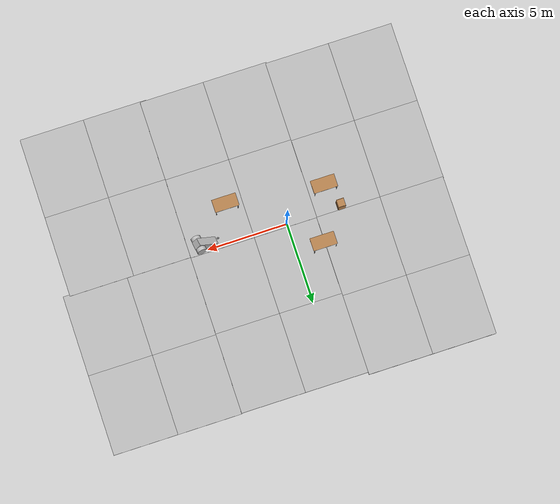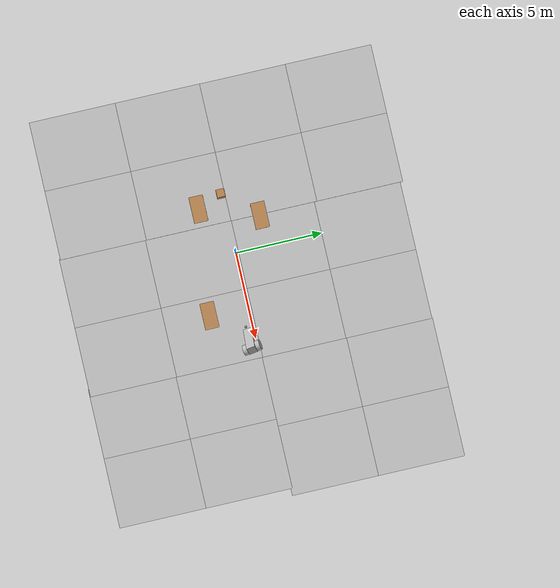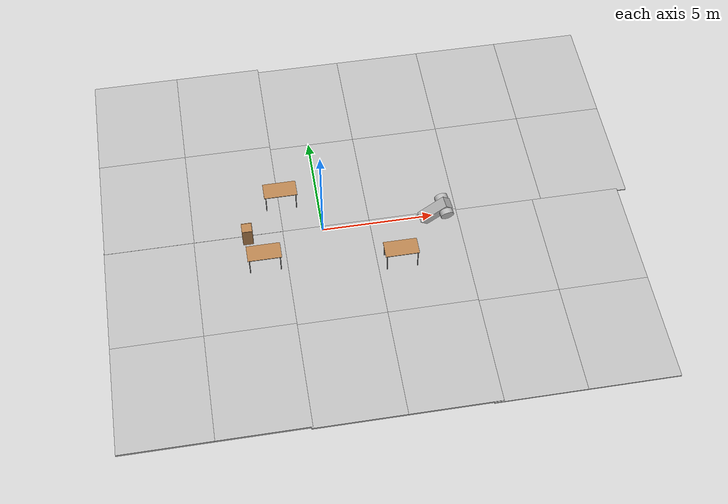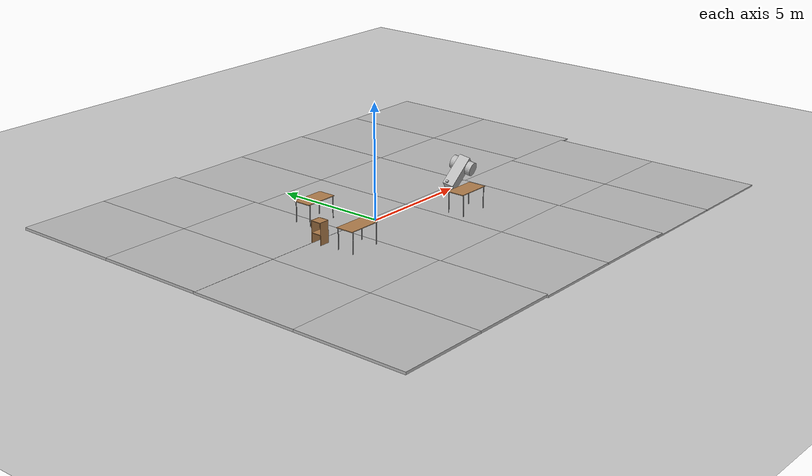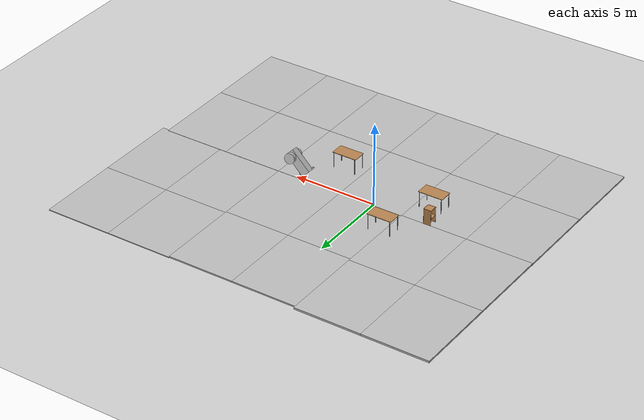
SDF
<sdf version="1.6">
 <world name="default">
  <light name="sun" type="directional">
   <pose>0 0 10 0 -0 0</pose>
   <diffuse>0.8 0.8 0.8 1</diffuse>
   <specular>0.2 0.2 0.2 1</specular>
   <attenuation>
    <range>1000</range>
    <constant>0.9</constant>
    <linear>0.01</linear>
    <quadratic>0.001</quadratic>
   </attenuation>
   <direction>-0.5 0.1 -0.9</direction>
  </light>
  <model name="ground_plane">
   <static>1</static>
   <link name="link">
    <collision name="collision">
     <geometry><plane><normal>0 0 1</normal><size>100 100</size></plane></geometry>
     <surface>
      <contact><collide_bitmask>65535</collide_bitmask></contact>
      <friction><ode><mu>100</mu><mu2>50</mu2></ode></friction>
     </surface>
    </collision>
    <visual name="visual">
     <cast_shadows>0</cast_shadows>
     <geometry><plane><normal>0 0 1</normal><size>100 100</size></plane></geometry>
     <material>
      <script><uri>file://media/materials/scripts/gazebo.material</uri><name>Gazebo/Grey</name></script>
     </material>
    </visual>
   </link>
  </model>
  <gravity>0 0 -9.8</gravity>
  <magnetic_field>6e-06 2.3e-05 -4.2e-05</magnetic_field>
  <atmosphere type="adiabatic"/>
  <physics name="default_physics" default="0" type="ode">
   <max_step_size>0.001</max_step_size>
   <real_time_factor>1</real_time_factor>
   <real_time_update_rate>1000</real_time_update_rate>
  </physics>
  <scene><ambient>0.4 0.4 0.4 1</ambient><background>0.7 0.7 0.7 1</background><shadows>1</shadows></scene>
  <spherical_coordinates>
   <surface_model>EARTH_WGS84</surface_model>
   <latitude_deg>0</latitude_deg>
   <longitude_deg>0</longitude_deg>
   <elevation>0</elevation>
   <heading_deg>0</heading_deg>
  </spherical_coordinates>
  <model name="table">
   <static>1</static>
   <link name="link">
    <collision name="surface">
     <pose>0 0 1 0 -0 0</pose>
     <geometry><box><size>1.5 0.8 0.03</size></box></geometry>
     <surface><friction><ode><mu>0.6</mu><mu2>0.6</mu2></ode></friction></surface>
    </collision>
    <visual name="visual1">
     <pose>0 0 1 0 -0 0</pose>
     <geometry><box><size>1.5 0.8 0.03</size></box></geometry>
     <material>
      <script><uri>file://media/materials/scripts/gazebo.material</uri><name>Gazebo/Wood</name></script>
     </material>
    </visual>
    <collision name="front_left_leg">
     <pose>0.68 0.38 0.5 0 -0 0</pose>
     <geometry><cylinder><radius>0.02</radius><length>1</length></cylinder></geometry>
    </collision>
    <visual name="front_left_leg">
     <pose>0.68 0.38 0.5 0 -0 0</pose>
     <geometry><cylinder><radius>0.02</radius><length>1</length></cylinder></geometry>
     <material>
      <script><uri>file://media/materials/scripts/gazebo.material</uri><name>Gazebo/Grey</name></script>
     </material>
    </visual>
    <collision name="front_right_leg">
     <pose>0.68 -0.38 0.5 0 -0 0</pose>
     <geometry><cylinder><radius>0.02</radius><length>1</length></cylinder></geometry>
    </collision>
    <visual name="front_right_leg">
     <pose>0.68 -0.38 0.5 0 -0 0</pose>
     <geometry><cylinder><radius>0.02</radius><length>1</length></cylinder></geometry>
     <material>
      <script><uri>file://media/materials/scripts/gazebo.material</uri><name>Gazebo/Grey</name></script>
     </material>
    </visual>
    <collision name="back_right_leg">
     <pose>-0.68 -0.38 0.5 0 -0 0</pose>
     <geometry><cylinder><radius>0.02</radius><length>1</length></cylinder></geometry>
    </collision>
    <visual name="back_right_leg">
     <pose>-0.68 -0.38 0.5 0 -0 0</pose>
     <geometry><cylinder><radius>0.02</radius><length>1</length></cylinder></geometry>
     <material>
      <script><uri>file://media/materials/scripts/gazebo.material</uri><name>Gazebo/Grey</name></script>
     </material>
    </visual>
    <collision name="back_left_leg">
     <pose>-0.68 0.38 0.5 0 -0 0</pose>
     <geometry><cylinder><radius>0.02</radius><length>1</length></cylinder></geometry>
    </collision>
    <visual name="back_left_leg">
     <pose>-0.68 0.38 0.5 0 -0 0</pose>
     <geometry><cylinder><radius>0.02</radius><length>1</length></cylinder></geometry>
     <material>
      <script><uri>file://media/materials/scripts/gazebo.material</uri><name>Gazebo/Grey</name></script>
     </material>
    </visual>
   </link>
   <pose>-1.70145 1.78974 0 0 -0 0</pose>
  </model>
  <model name="table_0">
   <static>1</static>
   <link name="link">
    <collision name="surface">
     <pose>0 0 1 0 -0 0</pose>
     <geometry><box><size>1.5 0.8 0.03</size></box></geometry>
     <surface><friction><ode><mu>0.6</mu><mu2>0.6</mu2></ode></friction></surface>
    </collision>
    <visual name="visual1">
     <pose>0 0 1 0 -0 0</pose>
     <geometry><box><size>1.5 0.8 0.03</size></box></geometry>
     <material>
      <script><uri>file://media/materials/scripts/gazebo.material</uri><name>Gazebo/Wood</name></script>
     </material>
    </visual>
    <collision name="front_left_leg">
     <pose>0.68 0.38 0.5 0 -0 0</pose>
     <geometry><cylinder><radius>0.02</radius><length>1</length></cylinder></geometry>
    </collision>
    <visual name="front_left_leg">
     <pose>0.68 0.38 0.5 0 -0 0</pose>
     <geometry><cylinder><radius>0.02</radius><length>1</length></cylinder></geometry>
     <material>
      <script><uri>file://media/materials/scripts/gazebo.material</uri><name>Gazebo/Grey</name></script>
     </material>
    </visual>
    <collision name="front_right_leg">
     <pose>0.68 -0.38 0.5 0 -0 0</pose>
     <geometry><cylinder><radius>0.02</radius><length>1</length></cylinder></geometry>
    </collision>
    <visual name="front_right_leg">
     <pose>0.68 -0.38 0.5 0 -0 0</pose>
     <geometry><cylinder><radius>0.02</radius><length>1</length></cylinder></geometry>
     <material>
      <script><uri>file://media/materials/scripts/gazebo.material</uri><name>Gazebo/Grey</name></script>
     </material>
    </visual>
    <collision name="back_right_leg">
     <pose>-0.68 -0.38 0.5 0 -0 0</pose>
     <geometry><cylinder><radius>0.02</radius><length>1</length></cylinder></geometry>
    </collision>
    <visual name="back_right_leg">
     <pose>-0.68 -0.38 0.5 0 -0 0</pose>
     <geometry><cylinder><radius>0.02</radius><length>1</length></cylinder></geometry>
     <material>
      <script><uri>file://media/materials/scripts/gazebo.material</uri><name>Gazebo/Grey</name></script>
     </material>
    </visual>
    <collision name="back_left_leg">
     <pose>-0.68 0.38 0.5 0 -0 0</pose>
     <geometry><cylinder><radius>0.02</radius><length>1</length></cylinder></geometry>
    </collision>
    <visual name="back_left_leg">
     <pose>-0.68 0.38 0.5 0 -0 0</pose>
     <geometry><cylinder><radius>0.02</radius><length>1</length></cylinder></geometry>
     <material>
      <script><uri>file://media/materials/scripts/gazebo.material</uri><name>Gazebo/Grey</name></script>
     </material>
    </visual>
   </link>
   <pose>-2.81 -1.50709 0 0 -0 0</pose>
  </model>
  <model name="cabinet">
   <static>1</static>
   <link name="cabinet_bottom_plate">
    <inertial>
     <pose>0 0 -1 0 -0 0</pose>
     <inertia><ixx>2.05</ixx><ixy>0</ixy><ixz>0</ixz><iyy>2.05</iyy><iyz>0</iyz><izz>2.05</izz></inertia>
     <mass>25</mass>
    </inertial>
    <collision name="cabinet_bottom_plate_geom">
     <pose>0 0 0.01 0 -0 0</pose>
     <geometry><box><size>0.45 0.45 0.02</size></box></geometry>
    </collision>
    <visual name="cabinet_bottom_plate_geom_visual">
     <pose>0 0 0.01 0 -0 0</pose>
     <geometry><box><size>0.45 0.45 0.02</size></box></geometry>
     <material>
      <script><uri>file://media/materials/scripts/gazebo.material</uri><name>Gazebo/Wood</name></script>
     </material>
    </visual>
    <collision name="cabinet_bottom_plate_geom_cabinet_back_plate">
     <pose>0.235 0 0.51 0 -0 0</pose>
     <geometry><box><size>0.02 0.45 1.02</size></box></geometry>
    </collision>
    <visual name="cabinet_bottom_plate_geom_cabinet_back_plate_visual">
     <pose>0.235 0 0.51 0 -0 0</pose>
     <geometry><box><size>0.02 0.45 1.02</size></box></geometry>
     <material>
      <script><uri>file://media/materials/scripts/gazebo.material</uri><name>Gazebo/Wood</name></script>
     </material>
    </visual>
    <collision name="cabinet_bottom_plate_geom_cabinet_left_plate">
     <pose>0 0.235 0.51 0 -0 0</pose>
     <geometry><box><size>0.45 0.02 1.02</size></box></geometry>
    </collision>
    <visual name="cabinet_bottom_plate_geom_cabinet_left_plate_visual">
     <pose>0 0.235 0.51 0 -0 0</pose>
     <geometry><box><size>0.45 0.02 1.02</size></box></geometry>
     <material>
      <script><uri>file://media/materials/scripts/gazebo.material</uri><name>Gazebo/Wood</name></script>
     </material>
    </visual>
    <collision name="cabinet_bottom_plate_geom_cabinet_middle_plate">
     <pose>0 0 0.51 0 -0 0</pose>
     <geometry><box><size>0.45 0.45 0.02</size></box></geometry>
    </collision>
    <visual name="cabinet_bottom_plate_geom_cabinet_middle_plate_visual">
     <pose>0 0 0.51 0 -0 0</pose>
     <geometry><box><size>0.45 0.45 0.02</size></box></geometry>
     <material>
      <script><uri>file://media/materials/scripts/gazebo.material</uri><name>Gazebo/Wood</name></script>
     </material>
    </visual>
    <collision name="cabinet_bottom_plate_geom_cabinet_right_plate">
     <pose>0 -0.235 0.51 0 -0 0</pose>
     <geometry><box><size>0.45 0.02 1.02</size></box></geometry>
    </collision>
    <visual name="cabinet_bottom_plate_geom_cabinet_right_plate_visual">
     <pose>0 -0.235 0.51 0 -0 0</pose>
     <geometry><box><size>0.45 0.02 1.02</size></box></geometry>
     <material>
      <script><uri>file://media/materials/scripts/gazebo.material</uri><name>Gazebo/Wood</name></script>
     </material>
    </visual>
    <collision name="cabinet_bottom_plate_geom_cabinet_top_plate">
     <pose>0 0 1.01 0 -0 0</pose>
     <geometry><box><size>0.45 0.45 0.02</size></box></geometry>
    </collision>
    <visual name="cabinet_bottom_plate_geom_cabinet_top_plate_visual">
     <pose>0 0 1.01 0 -0 0</pose>
     <geometry><box><size>0.45 0.45 0.02</size></box></geometry>
     <material>
      <script><uri>file://media/materials/scripts/gazebo.material</uri><name>Gazebo/Wood</name></script>
     </material>
    </visual>
   </link>
   <pose>-3.41931 -0.092845 0 0 -0 0</pose>
  </model>
  <model name="table_1">
   <static>1</static>
   <link name="link">
    <collision name="surface">
     <pose>0 0 1 0 -0 0</pose>
     <geometry><box><size>1.5 0.8 0.03</size></box></geometry>
     <surface><friction><ode><mu>0.6</mu><mu2>0.6</mu2></ode></friction></surface>
    </collision>
    <visual name="visual1">
     <pose>0 0 1 0 -0 0</pose>
     <geometry><box><size>1.5 0.8 0.03</size></box></geometry>
     <material>
      <script><uri>file://media/materials/scripts/gazebo.material</uri><name>Gazebo/Wood</name></script>
     </material>
    </visual>
    <collision name="front_left_leg">
     <pose>0.68 0.38 0.5 0 -0 0</pose>
     <geometry><cylinder><radius>0.02</radius><length>1</length></cylinder></geometry>
    </collision>
    <visual name="front_left_leg">
     <pose>0.68 0.38 0.5 0 -0 0</pose>
     <geometry><cylinder><radius>0.02</radius><length>1</length></cylinder></geometry>
     <material>
      <script><uri>file://media/materials/scripts/gazebo.material</uri><name>Gazebo/Grey</name></script>
     </material>
    </visual>
    <collision name="front_right_leg">
     <pose>0.68 -0.38 0.5 0 -0 0</pose>
     <geometry><cylinder><radius>0.02</radius><length>1</length></cylinder></geometry>
    </collision>
    <visual name="front_right_leg">
     <pose>0.68 -0.38 0.5 0 -0 0</pose>
     <geometry><cylinder><radius>0.02</radius><length>1</length></cylinder></geometry>
     <material>
      <script><uri>file://media/materials/scripts/gazebo.material</uri><name>Gazebo/Grey</name></script>
     </material>
    </visual>
    <collision name="back_right_leg">
     <pose>-0.68 -0.38 0.5 0 -0 0</pose>
     <geometry><cylinder><radius>0.02</radius><length>1</length></cylinder></geometry>
    </collision>
    <visual name="back_right_leg">
     <pose>-0.68 -0.38 0.5 0 -0 0</pose>
     <geometry><cylinder><radius>0.02</radius><length>1</length></cylinder></geometry>
     <material>
      <script><uri>file://media/materials/scripts/gazebo.material</uri><name>Gazebo/Grey</name></script>
     </material>
    </visual>
    <collision name="back_left_leg">
     <pose>-0.68 0.38 0.5 0 -0 0</pose>
     <geometry><cylinder><radius>0.02</radius><length>1</length></cylinder></geometry>
    </collision>
    <visual name="back_left_leg">
     <pose>-0.68 0.38 0.5 0 -0 0</pose>
     <geometry><cylinder><radius>0.02</radius><length>1</length></cylinder></geometry>
     <material>
      <script><uri>file://media/materials/scripts/gazebo.material</uri><name>Gazebo/Grey</name></script>
     </material>
    </visual>
   </link>
   <pose>3.1591 -2.24128 0 0 -0 0</pose>
  </model>
  <model name="fcar33">
   <link name="caster">
    <inertial>
     <mass>1</mass>
     <inertia><ixx>0.1</ixx><ixy>0</ixy><ixz>0</ixz><iyy>0.1</iyy><iyz>0</iyz><izz>0.1</izz></inertia>
    </inertial>
    <pose>-0.55 0 0.2 0 -0 0</pose>
    <visual name="visual">
     <geometry><sphere><radius>0.2</radius></sphere></geometry>
     <material><shader type="pixel"/><emissive>0 0 0 1</emissive></material>
    </visual>
    <collision name="collision">
     <geometry><sphere><radius>0.2</radius></sphere></geometry>
     <surface>
      <friction>
       <ode><mu>1</mu><mu2>1</mu2><fdir1>0 0 0</fdir1><slip1>0</slip1><slip2>0</slip2></ode>
       <torsional>
        <coefficient>1</coefficient>
        <patch_radius>0</patch_radius>
        <surface_radius>0</surface_radius>
        <use_patch_radius>1</use_patch_radius>
        <ode><slip>0</slip></ode>
       </torsional>
      </friction>
      <bounce><restitution_coefficient>0</restitution_coefficient><threshold>1e+06</threshold></bounce>
      <contact>
       <collide_without_contact>0</collide_without_contact>
       <collide_without_contact_bitmask>1</collide_without_contact_bitmask>
       <collide_bitmask>1</collide_bitmask>
       <ode>
        <soft_cfm>0</soft_cfm>
        <soft_erp>0.2</soft_erp>
        <kp>1e+13</kp>
        <kd>1</kd>
        <max_vel>0.01</max_vel>
        <min_depth>0</min_depth>
       </ode>
       <bullet>
        <split_impulse>1</split_impulse>
        <split_impulse_penetration_threshold>-0.01</split_impulse_penetration_threshold>
        <soft_cfm>0</soft_cfm>
        <soft_erp>0.2</soft_erp>
        <kp>1e+13</kp>
        <kd>1</kd>
       </bullet>
      </contact>
     </surface>
    </collision>
   </link>
   <link name="left_wheel">
    <inertial>
     <mass>1</mass>
     <inertia><ixx>0.145833</ixx><ixy>0</ixy><ixz>0</ixz><iyy>0.145833</iyy><iyz>0</iyz><izz>0.125</izz></inertia>
    </inertial>
    <pose>0.45 -0.375029 0.3 1.5707 -0 0</pose>
    <visual name="visual">
     <geometry><cylinder><radius>0.3</radius><length>0.25</length></cylinder></geometry>
     <material><shader type="pixel"/></material>
    </visual>
    <collision name="collision">
     <geometry><cylinder><radius>0.3</radius><length>0.25</length></cylinder></geometry>
     <surface>
      <friction>
       <ode><mu>1</mu><mu2>1</mu2><fdir1>0 0 0</fdir1><slip1>0</slip1><slip2>0</slip2></ode>
       <torsional>
        <coefficient>1</coefficient>
        <patch_radius>0</patch_radius>
        <surface_radius>0</surface_radius>
        <use_patch_radius>1</use_patch_radius>
        <ode><slip>0</slip></ode>
       </torsional>
      </friction>
      <bounce><restitution_coefficient>0</restitution_coefficient><threshold>1e+06</threshold></bounce>
      <contact>
       <collide_without_contact>0</collide_without_contact>
       <collide_without_contact_bitmask>1</collide_without_contact_bitmask>
       <collide_bitmask>1</collide_bitmask>
       <ode>
        <soft_cfm>0</soft_cfm>
        <soft_erp>0.2</soft_erp>
        <kp>1e+13</kp>
        <kd>1</kd>
        <max_vel>0.01</max_vel>
        <min_depth>0</min_depth>
       </ode>
       <bullet>
        <split_impulse>1</split_impulse>
        <split_impulse_penetration_threshold>-0.01</split_impulse_penetration_threshold>
        <soft_cfm>0</soft_cfm>
        <soft_erp>0.2</soft_erp>
        <kp>1e+13</kp>
        <kd>1</kd>
       </bullet>
      </contact>
     </surface>
    </collision>
   </link>
   <link name="mbody">
    <inertial>
     <mass>0.5</mass>
     <inertia>
      <ixx>0.0287018</ixx>
      <ixy>0</ixy>
      <ixz>0</ixz>
      <iyy>0.0850413</iyy>
      <iyz>0</iyz>
      <izz>0.0951773</izz>
     </inertia>
    </inertial>
    <pose>0 0 0.4 0 -0 0</pose>
    <visual name="visual">
     <geometry><box><size>1.5 0.5 0.5</size></box></geometry>
     <material><shader type="pixel"/><emissive>0 0 0 1</emissive></material>
    </visual>
    <collision name="collision">
     <geometry><box><size>1.5 0.5 0.5</size></box></geometry>
     <surface>
      <friction>
       <ode><mu>1</mu><mu2>1</mu2><fdir1>0 0 0</fdir1><slip1>0</slip1><slip2>0</slip2></ode>
       <torsional>
        <coefficient>1</coefficient>
        <patch_radius>0</patch_radius>
        <surface_radius>0</surface_radius>
        <use_patch_radius>1</use_patch_radius>
        <ode><slip>0</slip></ode>
       </torsional>
      </friction>
      <bounce><restitution_coefficient>0</restitution_coefficient><threshold>1e+06</threshold></bounce>
      <contact>
       <collide_without_contact>0</collide_without_contact>
       <collide_without_contact_bitmask>1</collide_without_contact_bitmask>
       <collide_bitmask>1</collide_bitmask>
       <ode>
        <soft_cfm>0</soft_cfm>
        <soft_erp>0.2</soft_erp>
        <kp>1e+13</kp>
        <kd>1</kd>
        <max_vel>0.01</max_vel>
        <min_depth>0</min_depth>
       </ode>
       <bullet>
        <split_impulse>1</split_impulse>
        <split_impulse_penetration_threshold>-0.01</split_impulse_penetration_threshold>
        <soft_cfm>0</soft_cfm>
        <soft_erp>0.2</soft_erp>
        <kp>1e+13</kp>
        <kd>1</kd>
       </bullet>
      </contact>
     </surface>
    </collision>
   </link>
   <link name="right_wheel">
    <inertial>
     <mass>1</mass>
     <inertia><ixx>0.145833</ixx><ixy>0</ixy><ixz>0</ixz><iyy>0.145833</iyy><iyz>0</iyz><izz>0.125</izz></inertia>
    </inertial>
    <pose>0.45 0.375029 0.3 1.5707 -0 0</pose>
    <visual name="visual">
     <geometry><cylinder><radius>0.3</radius><length>0.25</length></cylinder></geometry>
     <material><shader type="pixel"/></material>
    </visual>
    <collision name="collision">
     <geometry><cylinder><radius>0.3</radius><length>0.25</length></cylinder></geometry>
     <surface>
      <friction>
       <ode><mu>1</mu><mu2>1</mu2><fdir1>0 0 0</fdir1><slip1>0</slip1><slip2>0</slip2></ode>
       <torsional>
        <coefficient>1</coefficient>
        <patch_radius>0</patch_radius>
        <surface_radius>0</surface_radius>
        <use_patch_radius>1</use_patch_radius>
        <ode><slip>0</slip></ode>
       </torsional>
      </friction>
      <bounce><restitution_coefficient>0</restitution_coefficient><threshold>1e+06</threshold></bounce>
      <contact>
       <collide_without_contact>0</collide_without_contact>
       <collide_without_contact_bitmask>1</collide_without_contact_bitmask>
       <collide_bitmask>1</collide_bitmask>
       <ode>
        <soft_cfm>0</soft_cfm>
        <soft_erp>0.2</soft_erp>
        <kp>1e+13</kp>
        <kd>1</kd>
        <max_vel>0.01</max_vel>
        <min_depth>0</min_depth>
       </ode>
       <bullet>
        <split_impulse>1</split_impulse>
        <split_impulse_penetration_threshold>-0.01</split_impulse_penetration_threshold>
        <soft_cfm>0</soft_cfm>
        <soft_erp>0.2</soft_erp>
        <kp>1e+13</kp>
        <kd>1</kd>
       </bullet>
      </contact>
     </surface>
    </collision>
   </link>
   <model name="camera">
    <pose>-0.698828 0.002571 0.862719 0 -0 3.14132</pose>
    <link name="link">
     <inertial>
      <mass>0.1</mass>
      <inertia>
       <ixx>0.000166667</ixx>
       <iyy>0.000166667</iyy>
       <izz>0.000166667</izz>
       <ixy>0</ixy>
       <ixz>0</ixz>
       <iyz>0</iyz>
      </inertia>
     </inertial>
     <collision name="collision"><geometry><box><size>0.1 0.1 0.1</size></box></geometry></collision>
     <visual name="visual"><geometry><box><size>0.1 0.1 0.1</size></box></geometry></visual>
     <sensor name="camera" type="camera">
      <camera name="__default__">
       <horizontal_fov>1.047</horizontal_fov>
       <image><width>320</width><height>240</height></image>
       <clip><near>0.1</near><far>100</far></clip>
      </camera>
      <always_on>1</always_on>
      <update_rate>30</update_rate>
      <visualize>1</visualize>
      <plugin name="cam" filename="libgazebo_ros_camera.so">
       <ros>
        <namespace>/cam</namespace>
        <argument>image_raw:=custom_img</argument>
        <argument>camera_test_info:=custom_info</argument>
       </ros>
       <camera_name>custom_camera</camera_name>
       <frame_name>custom_frame</frame_name>
       <hack_baseline>0.07</hack_baseline>
      </plugin>
     </sensor>
    </link>
   </model>
   <joint name="c_joint" type="fixed">
    <parent>mbody</parent>
    <child>camera::link</child>
    <physics>
     <ode><limit><cfm>0</cfm><erp>0.2</erp></limit><suspension><cfm>0</cfm><erp>0.2</erp></suspension></ode>
    </physics>
   </joint>
   <joint name="left_joint" type="revolute">
    <parent>mbody</parent>
    <child>left_wheel</child>
    <axis>
     <xyz>0 0 1</xyz>
     <use_parent_model_frame>0</use_parent_model_frame>
     <limit>
      <lower>-1.79769e+308</lower>
      <upper>1.79769e+308</upper>
      <effort>-1</effort>
      <velocity>-1</velocity>
     </limit>
     <dynamics>
      <spring_reference>0</spring_reference>
      <spring_stiffness>0</spring_stiffness>
      <damping>0</damping>
      <friction>0</friction>
     </dynamics>
    </axis>
    <physics>
     <ode><limit><cfm>0</cfm><erp>0.2</erp></limit><suspension><cfm>0</cfm><erp>0.2</erp></suspension></ode>
    </physics>
   </joint>
   <joint name="mbody_JOINT_0" type="ball">
    <parent>mbody</parent>
    <child>caster</child>
    <physics>
     <ode><limit><cfm>0</cfm><erp>0.2</erp></limit><suspension><cfm>0</cfm><erp>0.2</erp></suspension></ode>
    </physics>
   </joint>
   <joint name="right_joint" type="revolute">
    <parent>mbody</parent>
    <child>right_wheel</child>
    <axis>
     <xyz>0 0 1</xyz>
     <use_parent_model_frame>0</use_parent_model_frame>
     <limit>
      <lower>-1.79769e+308</lower>
      <upper>1.79769e+308</upper>
      <effort>-1</effort>
      <velocity>-1</velocity>
     </limit>
     <dynamics>
      <spring_reference>0</spring_reference>
      <spring_stiffness>0</spring_stiffness>
      <damping>0</damping>
      <friction>0</friction>
     </dynamics>
    </axis>
    <physics>
     <ode><limit><cfm>0</cfm><erp>0.2</erp></limit><suspension><cfm>0</cfm><erp>0.2</erp></suspension></ode>
    </physics>
   </joint>
   <static>0</static>
   <plugin name="diff_drive" filename="libgazebo_ros_diff_drive.so">
    <ros><namespace>/pos</namespace><argument>cmd_vel:=cmd_pos</argument><argument>odom:=odom_pos</argument></ros>
    <left_joint>left_joint</left_joint>
    <right_joint>right_joint</right_joint>
    <wheel_separation>1.25</wheel_separation>
    <wheel_diameter>0.6</wheel_diameter>
    <max_wheel_torque>20</max_wheel_torque>
    <max_wheel_acceleration>1.0</max_wheel_acceleration>
    <publish_odom>1</publish_odom>
    <publish_odom_tf>1</publish_odom_tf>
    <publish_wheel_tf>1</publish_wheel_tf>
    <odometry_frame>odom_demo</odometry_frame>
    <robot_base_frame>chassis</robot_base_frame>
   </plugin>
   <pose>5.31372 -0.215431 0.491971 0.28612 -0.744531 -0.052076</pose>
  </model>
  <model name="mud_box">
   <static>1</static>
   <link name="link">
    <collision name="collision"><geometry><box><size>8 10 0.2</size></box></geometry></collision>
    <visual name="visual_1">
     <pose>-2 2.5 0 0 -0 0</pose>
     <cast_shadows>0</cast_shadows>
     <geometry><box><size>4 5 0.2</size></box></geometry>
     <material>
      <script>
       <uri>model://mud_box/materials/scripts</uri>
       <uri>model://mud_box/materials/textures</uri>
       <name>vrc/mud</name>
      </script>
     </material>
    </visual>
    <visual name="visual_2">
     <pose>2 2.5 0 0 -0 0</pose>
     <cast_shadows>0</cast_shadows>
     <geometry><box><size>4 5 0.2</size></box></geometry>
     <material>
      <script>
       <uri>model://mud_box/materials/scripts</uri>
       <uri>model://mud_box/materials/textures</uri>
       <name>vrc/mud</name>
      </script>
     </material>
    </visual>
    <visual name="visual_3">
     <pose>2 -2.5 0 0 -0 0</pose>
     <cast_shadows>0</cast_shadows>
     <geometry><box><size>4 5 0.2</size></box></geometry>
     <material>
      <script>
       <uri>model://mud_box/materials/scripts</uri>
       <uri>model://mud_box/materials/textures</uri>
       <name>vrc/mud</name>
      </script>
     </material>
    </visual>
    <visual name="visual_4">
     <pose>-2 -2.5 0 0 -0 0</pose>
     <cast_shadows>0</cast_shadows>
     <geometry><box><size>4 5 0.2</size></box></geometry>
     <material>
      <script>
       <uri>model://mud_box/materials/scripts</uri>
       <uri>model://mud_box/materials/textures</uri>
       <name>vrc/mud</name>
      </script>
     </material>
    </visual>
   </link>
   <pose>-5.82468 -4.78035 -0.023018 0 -0 0</pose>
  </model>
  <model name="mud_box_clone">
   <static>1</static>
   <link name="link">
    <collision name="collision"><geometry><box><size>8 10 0.2</size></box></geometry></collision>
    <visual name="visual_1">
     <pose>-2 2.5 0 0 -0 0</pose>
     <cast_shadows>0</cast_shadows>
     <geometry><box><size>4 5 0.2</size></box></geometry>
     <material>
      <script>
       <uri>model://mud_box/materials/scripts</uri>
       <uri>model://mud_box/materials/textures</uri>
       <name>vrc/mud</name>
      </script>
     </material>
    </visual>
    <visual name="visual_2">
     <pose>2 2.5 0 0 -0 0</pose>
     <cast_shadows>0</cast_shadows>
     <geometry><box><size>4 5 0.2</size></box></geometry>
     <material>
      <script>
       <uri>model://mud_box/materials/scripts</uri>
       <uri>model://mud_box/materials/textures</uri>
       <name>vrc/mud</name>
      </script>
     </material>
    </visual>
    <visual name="visual_3">
     <pose>2 -2.5 0 0 -0 0</pose>
     <cast_shadows>0</cast_shadows>
     <geometry><box><size>4 5 0.2</size></box></geometry>
     <material>
      <script>
       <uri>model://mud_box/materials/scripts</uri>
       <uri>model://mud_box/materials/textures</uri>
       <name>vrc/mud</name>
      </script>
     </material>
    </visual>
    <visual name="visual_4">
     <pose>-2 -2.5 0 0 -0 0</pose>
     <cast_shadows>0</cast_shadows>
     <geometry><box><size>4 5 0.2</size></box></geometry>
     <material>
      <script>
       <uri>model://mud_box/materials/scripts</uri>
       <uri>model://mud_box/materials/textures</uri>
       <name>vrc/mud</name>
      </script>
     </material>
    </visual>
   </link>
   <pose>-5.81161 5.13688 -0.016884 0 -0 0</pose>
  </model>
  <model name="mud_box_clone_0">
   <static>1</static>
   <link name="link">
    <collision name="collision"><geometry><box><size>8 10 0.2</size></box></geometry></collision>
    <visual name="visual_1">
     <pose>-2 2.5 0 0 -0 0</pose>
     <cast_shadows>0</cast_shadows>
     <geometry><box><size>4 5 0.2</size></box></geometry>
     <material>
      <script>
       <uri>model://mud_box/materials/scripts</uri>
       <uri>model://mud_box/materials/textures</uri>
       <name>vrc/mud</name>
      </script>
     </material>
    </visual>
    <visual name="visual_2">
     <pose>2 2.5 0 0 -0 0</pose>
     <cast_shadows>0</cast_shadows>
     <geometry><box><size>4 5 0.2</size></box></geometry>
     <material>
      <script>
       <uri>model://mud_box/materials/scripts</uri>
       <uri>model://mud_box/materials/textures</uri>
       <name>vrc/mud</name>
      </script>
     </material>
    </visual>
    <visual name="visual_3">
     <pose>2 -2.5 0 0 -0 0</pose>
     <cast_shadows>0</cast_shadows>
     <geometry><box><size>4 5 0.2</size></box></geometry>
     <material>
      <script>
       <uri>model://mud_box/materials/scripts</uri>
       <uri>model://mud_box/materials/textures</uri>
       <name>vrc/mud</name>
      </script>
     </material>
    </visual>
    <visual name="visual_4">
     <pose>-2 -2.5 0 0 -0 0</pose>
     <cast_shadows>0</cast_shadows>
     <geometry><box><size>4 5 0.2</size></box></geometry>
     <material>
      <script>
       <uri>model://mud_box/materials/scripts</uri>
       <uri>model://mud_box/materials/textures</uri>
       <name>vrc/mud</name>
      </script>
     </material>
    </visual>
   </link>
   <pose>2.12086 4.98432 -0.048176 0 -0 0</pose>
  </model>
  <model name="mud_box_clone_1">
   <static>1</static>
   <link name="link">
    <collision name="collision"><geometry><box><size>8 10 0.2</size></box></geometry></collision>
    <visual name="visual_1">
     <pose>-2 2.5 0 0 -0 0</pose>
     <cast_shadows>0</cast_shadows>
     <geometry><box><size>4 5 0.2</size></box></geometry>
     <material>
      <script>
       <uri>model://mud_box/materials/scripts</uri>
       <uri>model://mud_box/materials/textures</uri>
       <name>vrc/mud</name>
      </script>
     </material>
    </visual>
    <visual name="visual_2">
     <pose>2 2.5 0 0 -0 0</pose>
     <cast_shadows>0</cast_shadows>
     <geometry><box><size>4 5 0.2</size></box></geometry>
     <material>
      <script>
       <uri>model://mud_box/materials/scripts</uri>
       <uri>model://mud_box/materials/textures</uri>
       <name>vrc/mud</name>
      </script>
     </material>
    </visual>
    <visual name="visual_3">
     <pose>2 -2.5 0 0 -0 0</pose>
     <cast_shadows>0</cast_shadows>
     <geometry><box><size>4 5 0.2</size></box></geometry>
     <material>
      <script>
       <uri>model://mud_box/materials/scripts</uri>
       <uri>model://mud_box/materials/textures</uri>
       <name>vrc/mud</name>
      </script>
     </material>
    </visual>
    <visual name="visual_4">
     <pose>-2 -2.5 0 0 -0 0</pose>
     <cast_shadows>0</cast_shadows>
     <geometry><box><size>4 5 0.2</size></box></geometry>
     <material>
      <script>
       <uri>model://mud_box/materials/scripts</uri>
       <uri>model://mud_box/materials/textures</uri>
       <name>vrc/mud</name>
      </script>
     </material>
    </visual>
   </link>
   <pose>2.11551 -4.8443 -0.039622 0 -0 0</pose>
  </model>
  <model name="mud_box_clone_2">
   <static>1</static>
   <link name="link">
    <collision name="collision"><geometry><box><size>8 10 0.2</size></box></geometry></collision>
    <visual name="visual_1">
     <pose>-2 2.5 0 0 -0 0</pose>
     <cast_shadows>0</cast_shadows>
     <geometry><box><size>4 5 0.2</size></box></geometry>
     <material>
      <script>
       <uri>model://mud_box/materials/scripts</uri>
       <uri>model://mud_box/materials/textures</uri>
       <name>vrc/mud</name>
      </script>
     </material>
    </visual>
    <visual name="visual_2">
     <pose>2 2.5 0 0 -0 0</pose>
     <cast_shadows>0</cast_shadows>
     <geometry><box><size>4 5 0.2</size></box></geometry>
     <material>
      <script>
       <uri>model://mud_box/materials/scripts</uri>
       <uri>model://mud_box/materials/textures</uri>
       <name>vrc/mud</name>
      </script>
     </material>
    </visual>
    <visual name="visual_3">
     <pose>2 -2.5 0 0 -0 0</pose>
     <cast_shadows>0</cast_shadows>
     <geometry><box><size>4 5 0.2</size></box></geometry>
     <material>
      <script>
       <uri>model://mud_box/materials/scripts</uri>
       <uri>model://mud_box/materials/textures</uri>
       <name>vrc/mud</name>
      </script>
     </material>
    </visual>
    <visual name="visual_4">
     <pose>-2 -2.5 0 0 -0 0</pose>
     <cast_shadows>0</cast_shadows>
     <geometry><box><size>4 5 0.2</size></box></geometry>
     <material>
      <script>
       <uri>model://mud_box/materials/scripts</uri>
       <uri>model://mud_box/materials/textures</uri>
       <name>vrc/mud</name>
      </script>
     </material>
    </visual>
   </link>
   <pose>9.69669 -4.883 -0.067153 0 -0 0</pose>
  </model>
  <model name="mud_box_clone_3">
   <static>1</static>
   <link name="link">
    <collision name="collision"><geometry><box><size>8 10 0.2</size></box></geometry></collision>
    <visual name="visual_1">
     <pose>-2 2.5 0 0 -0 0</pose>
     <cast_shadows>0</cast_shadows>
     <geometry><box><size>4 5 0.2</size></box></geometry>
     <material>
      <script>
       <uri>model://mud_box/materials/scripts</uri>
       <uri>model://mud_box/materials/textures</uri>
       <name>vrc/mud</name>
      </script>
     </material>
    </visual>
    <visual name="visual_2">
     <pose>2 2.5 0 0 -0 0</pose>
     <cast_shadows>0</cast_shadows>
     <geometry><box><size>4 5 0.2</size></box></geometry>
     <material>
      <script>
       <uri>model://mud_box/materials/scripts</uri>
       <uri>model://mud_box/materials/textures</uri>
       <name>vrc/mud</name>
      </script>
     </material>
    </visual>
    <visual name="visual_3">
     <pose>2 -2.5 0 0 -0 0</pose>
     <cast_shadows>0</cast_shadows>
     <geometry><box><size>4 5 0.2</size></box></geometry>
     <material>
      <script>
       <uri>model://mud_box/materials/scripts</uri>
       <uri>model://mud_box/materials/textures</uri>
       <name>vrc/mud</name>
      </script>
     </material>
    </visual>
    <visual name="visual_4">
     <pose>-2 -2.5 0 0 -0 0</pose>
     <cast_shadows>0</cast_shadows>
     <geometry><box><size>4 5 0.2</size></box></geometry>
     <material>
      <script>
       <uri>model://mud_box/materials/scripts</uri>
       <uri>model://mud_box/materials/textures</uri>
       <name>vrc/mud</name>
      </script>
     </material>
    </visual>
   </link>
   <pose>10.1018 5.02177 -0.08017 0 -0 0</pose>
  </model>
  <audio><device>default</device></audio>
 </world>
</sdf>
